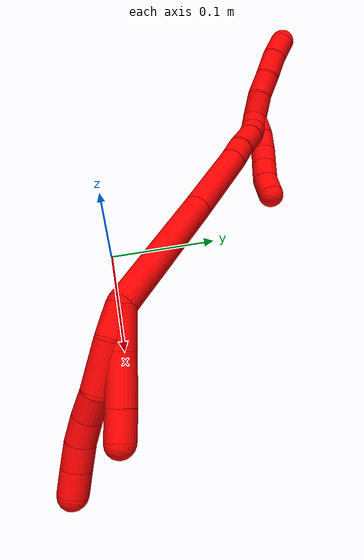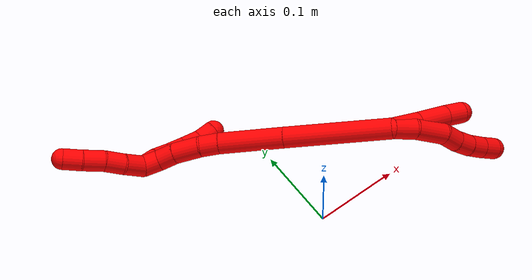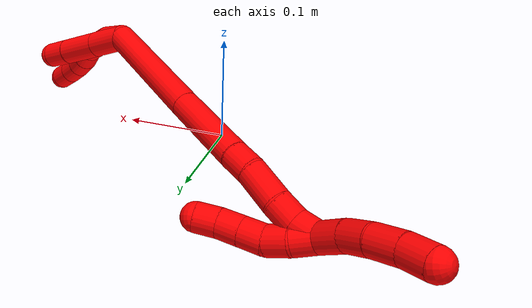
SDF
<sdf version="1.7">
 <world name="default">
  <model name="2">
   <static>0</static>
   <link name="2">
    <collision name="collision-cylinder-e_1_2_8">
     <pose>0.000602 -0.001704 0.013663 0.124067 0.043672 0.002713</pose>
     <geometry><cylinder><radius>0.0125</radius><length>0.027563</length></cylinder></geometry>
     <surface>
      <friction><ode><mu>1.16</mu><mu2>1.16</mu2><slip1>0</slip1><slip2>0</slip2></ode></friction>
      <contact><ode><kp>1e+06</kp><kd>1</kd><max_vel>0</max_vel><min_depth>0.001</min_depth></ode></contact>
     </surface>
    </collision>
    <visual name="visual-cylinder-e_1_2_8">
     <pose>0.000602 -0.001704 0.013663 0.124067 0.043672 0.002713</pose>
     <geometry><cylinder><radius>0.0125</radius><length>0.027563</length></cylinder></geometry>
     <material><ambient>1 0 0 1</ambient></material>
    </visual>
    <collision name="collision-cylinder-e_2_8_9">
     <pose>0.003071 -0.001054 0.047393 -0.116773 0.092162 -0.005391</pose>
     <geometry><cylinder><radius>0.0125</radius><length>0.040582</length></cylinder></geometry>
     <surface>
      <friction><ode><mu>1.16</mu><mu2>1.16</mu2><slip1>0</slip1><slip2>0</slip2></ode></friction>
      <contact><ode><kp>1e+06</kp><kd>1</kd><max_vel>0</max_vel><min_depth>0.001</min_depth></ode></contact>
     </surface>
    </collision>
    <visual name="visual-cylinder-e_2_8_9">
     <pose>0.003071 -0.001054 0.047393 -0.116773 0.092162 -0.005391</pose>
     <geometry><cylinder><radius>0.0125</radius><length>0.040582</length></cylinder></geometry>
     <material><ambient>1 0 0 1</ambient></material>
    </visual>
    <collision name="collision-cylinder-e_3_9_10">
     <pose>0.00785 0.004788 0.077192 -0.344141 0.274547 -0.048006</pose>
     <geometry><cylinder><radius>0.0125</radius><length>0.021481</length></cylinder></geometry>
     <surface>
      <friction><ode><mu>1.16</mu><mu2>1.16</mu2><slip1>0</slip1><slip2>0</slip2></ode></friction>
      <contact><ode><kp>1e+06</kp><kd>1</kd><max_vel>0</max_vel><min_depth>0.001</min_depth></ode></contact>
     </surface>
    </collision>
    <visual name="visual-cylinder-e_3_9_10">
     <pose>0.00785 0.004788 0.077192 -0.344141 0.274547 -0.048006</pose>
     <geometry><cylinder><radius>0.0125</radius><length>0.021481</length></cylinder></geometry>
     <material><ambient>1 0 0 1</ambient></material>
    </visual>
    <collision name="collision-cylinder-e_4_10_11">
     <pose>0.012347 0.010861 0.096629 -0.260255 0.156562 -0.02053</pose>
     <geometry><cylinder><radius>0.0125</radius><length>0.020334</length></cylinder></geometry>
     <surface>
      <friction><ode><mu>1.16</mu><mu2>1.16</mu2><slip1>0</slip1><slip2>0</slip2></ode></friction>
      <contact><ode><kp>1e+06</kp><kd>1</kd><max_vel>0</max_vel><min_depth>0.001</min_depth></ode></contact>
     </surface>
    </collision>
    <visual name="visual-cylinder-e_4_10_11">
     <pose>0.012347 0.010861 0.096629 -0.260255 0.156562 -0.02053</pose>
     <geometry><cylinder><radius>0.0125</radius><length>0.020334</length></cylinder></geometry>
     <material><ambient>1 0 0 1</ambient></material>
    </visual>
    <collision name="collision-cylinder-e_5_11_12">
     <pose>0.014141 0.01572 0.116071 -0.229475 0.020863 -0.002404</pose>
     <geometry><cylinder><radius>0.0125</radius><length>0.020003</length></cylinder></geometry>
     <surface>
      <friction><ode><mu>1.16</mu><mu2>1.16</mu2><slip1>0</slip1><slip2>0</slip2></ode></friction>
      <contact><ode><kp>1e+06</kp><kd>1</kd><max_vel>0</max_vel><min_depth>0.001</min_depth></ode></contact>
     </surface>
    </collision>
    <visual name="visual-cylinder-e_5_11_12">
     <pose>0.014141 0.01572 0.116071 -0.229475 0.020863 -0.002404</pose>
     <geometry><cylinder><radius>0.0125</radius><length>0.020003</length></cylinder></geometry>
     <material><ambient>1 0 0 1</ambient></material>
    </visual>
    <collision name="collision-cylinder-e_6_12_6">
     <pose>0.014189 0.019881 0.135645 -0.189479 -0.016054 0.001526</pose>
     <geometry><cylinder><radius>0.0125</radius><length>0.020036</length></cylinder></geometry>
     <surface>
      <friction><ode><mu>1.16</mu><mu2>1.16</mu2><slip1>0</slip1><slip2>0</slip2></ode></friction>
      <contact><ode><kp>1e+06</kp><kd>1</kd><max_vel>0</max_vel><min_depth>0.001</min_depth></ode></contact>
     </surface>
    </collision>
    <visual name="visual-cylinder-e_6_12_6">
     <pose>0.014189 0.019881 0.135645 -0.189479 -0.016054 0.001526</pose>
     <geometry><cylinder><radius>0.0125</radius><length>0.020036</length></cylinder></geometry>
     <material><ambient>1 0 0 1</ambient></material>
    </visual>
    <collision name="collision-cylinder-e_1_2_13">
     <pose>-0.003957 0.000388 0.017307 -0.022416 -0.224727 0.00253</pose>
     <geometry><cylinder><radius>0.0125</radius><length>0.035516</length></cylinder></geometry>
     <surface>
      <friction><ode><mu>1.16</mu><mu2>1.16</mu2><slip1>0</slip1><slip2>0</slip2></ode></friction>
      <contact><ode><kp>1e+06</kp><kd>1</kd><max_vel>0</max_vel><min_depth>0.001</min_depth></ode></contact>
     </surface>
    </collision>
    <visual name="visual-cylinder-e_1_2_13">
     <pose>-0.003957 0.000388 0.017307 -0.022416 -0.224727 0.00253</pose>
     <geometry><cylinder><radius>0.0125</radius><length>0.035516</length></cylinder></geometry>
     <material><ambient>1 0 0 1</ambient></material>
    </visual>
    <collision name="collision-cylinder-e_2_13_14">
     <pose>-0.012827 0.001201 0.054269 -0.021625 -0.244891 0.002661</pose>
     <geometry><cylinder><radius>0.0125</radius><length>0.040528</length></cylinder></geometry>
     <surface>
      <friction><ode><mu>1.16</mu><mu2>1.16</mu2><slip1>0</slip1><slip2>0</slip2></ode></friction>
      <contact><ode><kp>1e+06</kp><kd>1</kd><max_vel>0</max_vel><min_depth>0.001</min_depth></ode></contact>
     </surface>
    </collision>
    <visual name="visual-cylinder-e_2_13_14">
     <pose>-0.012827 0.001201 0.054269 -0.021625 -0.244891 0.002661</pose>
     <geometry><cylinder><radius>0.0125</radius><length>0.040528</length></cylinder></geometry>
     <material><ambient>1 0 0 1</ambient></material>
    </visual>
    <collision name="collision-cylinder-e_3_14_5">
     <pose>-0.020207 0.001737 0.085645 -0.009422 -0.207378 0.00098</pose>
     <geometry><cylinder><radius>0.0125</radius><length>0.023956</length></cylinder></geometry>
     <surface>
      <friction><ode><mu>1.16</mu><mu2>1.16</mu2><slip1>0</slip1><slip2>0</slip2></ode></friction>
      <contact><ode><kp>1e+06</kp><kd>1</kd><max_vel>0</max_vel><min_depth>0.001</min_depth></ode></contact>
     </surface>
    </collision>
    <visual name="visual-cylinder-e_3_14_5">
     <pose>-0.020207 0.001737 0.085645 -0.009422 -0.207378 0.00098</pose>
     <geometry><cylinder><radius>0.0125</radius><length>0.023956</length></cylinder></geometry>
     <material><ambient>1 0 0 1</ambient></material>
    </visual>
    <collision name="collision-cylinder-e_1_2_15">
     <pose>-0.008078 0.037794 -0.050704 -2.50105 -0.127044 0.378935</pose>
     <geometry><cylinder><radius>0.0125</radius><length>0.127508</length></cylinder></geometry>
     <surface>
      <friction><ode><mu>1.16</mu><mu2>1.16</mu2><slip1>0</slip1><slip2>0</slip2></ode></friction>
      <contact><ode><kp>1e+06</kp><kd>1</kd><max_vel>0</max_vel><min_depth>0.001</min_depth></ode></contact>
     </surface>
    </collision>
    <visual name="visual-cylinder-e_1_2_15">
     <pose>-0.008078 0.037794 -0.050704 -2.50105 -0.127044 0.378935</pose>
     <geometry><cylinder><radius>0.0125</radius><length>0.127508</length></cylinder></geometry>
     <material><ambient>1 0 0 1</ambient></material>
    </visual>
    <collision name="collision-cylinder-e_2_15_16">
     <pose>-0.020601 0.09806 -0.13211 -2.50975 -0.116323 0.352575</pose>
     <geometry><cylinder><radius>0.0125</radius><length>0.076613</length></cylinder></geometry>
     <surface>
      <friction><ode><mu>1.16</mu><mu2>1.16</mu2><slip1>0</slip1><slip2>0</slip2></ode></friction>
      <contact><ode><kp>1e+06</kp><kd>1</kd><max_vel>0</max_vel><min_depth>0.001</min_depth></ode></contact>
     </surface>
    </collision>
    <visual name="visual-cylinder-e_2_15_16">
     <pose>-0.020601 0.09806 -0.13211 -2.50975 -0.116323 0.352575</pose>
     <geometry><cylinder><radius>0.0125</radius><length>0.076613</length></cylinder></geometry>
     <material><ambient>1 0 0 1</ambient></material>
    </visual>
    <collision name="collision-cylinder-e_3_16_17">
     <pose>-0.025518 0.127139 -0.171626 -2.49836 -0.042683 0.12795</pose>
     <geometry><cylinder><radius>0.0125</radius><length>0.022049</length></cylinder></geometry>
     <surface>
      <friction><ode><mu>1.16</mu><mu2>1.16</mu2><slip1>0</slip1><slip2>0</slip2></ode></friction>
      <contact><ode><kp>1e+06</kp><kd>1</kd><max_vel>0</max_vel><min_depth>0.001</min_depth></ode></contact>
     </surface>
    </collision>
    <visual name="visual-cylinder-e_3_16_17">
     <pose>-0.025518 0.127139 -0.171626 -2.49836 -0.042683 0.12795</pose>
     <geometry><cylinder><radius>0.0125</radius><length>0.022049</length></cylinder></geometry>
     <material><ambient>1 0 0 1</ambient></material>
    </visual>
    <collision name="collision-cylinder-e_4_17_18">
     <pose>-0.026167 0.145663 -0.191529 -2.32021 -0.01098 0.025214</pose>
     <geometry><cylinder><radius>0.0125</radius><length>0.032561</length></cylinder></geometry>
     <surface>
      <friction><ode><mu>1.16</mu><mu2>1.16</mu2><slip1>0</slip1><slip2>0</slip2></ode></friction>
      <contact><ode><kp>1e+06</kp><kd>1</kd><max_vel>0</max_vel><min_depth>0.001</min_depth></ode></contact>
     </surface>
    </collision>
    <visual name="visual-cylinder-e_4_17_18">
     <pose>-0.026167 0.145663 -0.191529 -2.32021 -0.01098 0.025214</pose>
     <geometry><cylinder><radius>0.0125</radius><length>0.032561</length></cylinder></geometry>
     <material><ambient>1 0 0 1</ambient></material>
    </visual>
    <collision name="collision-cylinder-e_5_18_19">
     <pose>-0.024901 0.165474 -0.209429 -2.28268 0.137694 -0.298895</pose>
     <geometry><cylinder><radius>0.0125</radius><length>0.021047</length></cylinder></geometry>
     <surface>
      <friction><ode><mu>1.16</mu><mu2>1.16</mu2><slip1>0</slip1><slip2>0</slip2></ode></friction>
      <contact><ode><kp>1e+06</kp><kd>1</kd><max_vel>0</max_vel><min_depth>0.001</min_depth></ode></contact>
     </surface>
    </collision>
    <visual name="visual-cylinder-e_5_18_19">
     <pose>-0.024901 0.165474 -0.209429 -2.28268 0.137694 -0.298895</pose>
     <geometry><cylinder><radius>0.0125</radius><length>0.021047</length></cylinder></geometry>
     <material><ambient>1 0 0 1</ambient></material>
    </visual>
    <collision name="collision-cylinder-e_6_19_1">
     <pose>-0.021571 0.178811 -0.224546 -2.56142 0.187553 -0.610454</pose>
     <geometry><cylinder><radius>0.0125</radius><length>0.020222</length></cylinder></geometry>
     <surface>
      <friction><ode><mu>1.16</mu><mu2>1.16</mu2><slip1>0</slip1><slip2>0</slip2></ode></friction>
      <contact><ode><kp>1e+06</kp><kd>1</kd><max_vel>0</max_vel><min_depth>0.001</min_depth></ode></contact>
     </surface>
    </collision>
    <visual name="visual-cylinder-e_6_19_1">
     <pose>-0.021571 0.178811 -0.224546 -2.56142 0.187553 -0.610454</pose>
     <geometry><cylinder><radius>0.0125</radius><length>0.020222</length></cylinder></geometry>
     <material><ambient>1 0 0 1</ambient></material>
    </visual>
    <collision name="collision-cylinder-e_1_1_20">
     <pose>-0.024651 0.184759 -0.224188 -0.057876 -0.519519 0.015385</pose>
     <geometry><cylinder><radius>0.0125</radius><length>0.02</length></cylinder></geometry>
     <surface>
      <friction><ode><mu>1.16</mu><mu2>1.16</mu2><slip1>0</slip1><slip2>0</slip2></ode></friction>
      <contact><ode><kp>1e+06</kp><kd>1</kd><max_vel>0</max_vel><min_depth>0.001</min_depth></ode></contact>
     </surface>
    </collision>
    <visual name="visual-cylinder-e_1_1_20">
     <pose>-0.024651 0.184759 -0.224188 -0.057876 -0.519519 0.015385</pose>
     <geometry><cylinder><radius>0.0125</radius><length>0.02</length></cylinder></geometry>
     <material><ambient>1 0 0 1</ambient></material>
    </visual>
    <collision name="collision-cylinder-e_2_20_21">
     <pose>-0.032904 0.184982 -0.206083 0.029593 -0.335049 -0.005005</pose>
     <geometry><cylinder><radius>0.0125</radius><length>0.02</length></cylinder></geometry>
     <surface>
      <friction><ode><mu>1.16</mu><mu2>1.16</mu2><slip1>0</slip1><slip2>0</slip2></ode></friction>
      <contact><ode><kp>1e+06</kp><kd>1</kd><max_vel>0</max_vel><min_depth>0.001</min_depth></ode></contact>
     </surface>
    </collision>
    <visual name="visual-cylinder-e_2_20_21">
     <pose>-0.032904 0.184982 -0.206083 0.029593 -0.335049 -0.005005</pose>
     <geometry><cylinder><radius>0.0125</radius><length>0.02</length></cylinder></geometry>
     <material><ambient>1 0 0 1</ambient></material>
    </visual>
    <collision name="collision-cylinder-e_3_21_22">
     <pose>-0.039072 0.181131 -0.187757 0.38214 -0.292208 -0.056912</pose>
     <geometry><cylinder><radius>0.0125</radius><length>0.02</length></cylinder></geometry>
     <surface>
      <friction><ode><mu>1.16</mu><mu2>1.16</mu2><slip1>0</slip1><slip2>0</slip2></ode></friction>
      <contact><ode><kp>1e+06</kp><kd>1</kd><max_vel>0</max_vel><min_depth>0.001</min_depth></ode></contact>
     </surface>
    </collision>
    <visual name="visual-cylinder-e_3_21_22">
     <pose>-0.039072 0.181131 -0.187757 0.38214 -0.292208 -0.056912</pose>
     <geometry><cylinder><radius>0.0125</radius><length>0.02</length></cylinder></geometry>
     <material><ambient>1 0 0 1</ambient></material>
    </visual>
    <collision name="collision-cylinder-e_4_22_23">
     <pose>-0.045008 0.173968 -0.170053 0.386799 -0.310425 -0.06127</pose>
     <geometry><cylinder><radius>0.0125</radius><length>0.02</length></cylinder></geometry>
     <surface>
      <friction><ode><mu>1.16</mu><mu2>1.16</mu2><slip1>0</slip1><slip2>0</slip2></ode></friction>
      <contact><ode><kp>1e+06</kp><kd>1</kd><max_vel>0</max_vel><min_depth>0.001</min_depth></ode></contact>
     </surface>
    </collision>
    <visual name="visual-cylinder-e_4_22_23">
     <pose>-0.045008 0.173968 -0.170053 0.386799 -0.310425 -0.06127</pose>
     <geometry><cylinder><radius>0.0125</radius><length>0.02</length></cylinder></geometry>
     <material><ambient>1 0 0 1</ambient></material>
    </visual>
    <collision name="collision-cylinder-e_5_23_4">
     <pose>-0.053102 0.16722 -0.153195 0.374063 -0.528172 -0.102254</pose>
     <geometry><cylinder><radius>0.0125</radius><length>0.02</length></cylinder></geometry>
     <surface>
      <friction><ode><mu>1.16</mu><mu2>1.16</mu2><slip1>0</slip1><slip2>0</slip2></ode></friction>
      <contact><ode><kp>1e+06</kp><kd>1</kd><max_vel>0</max_vel><min_depth>0.001</min_depth></ode></contact>
     </surface>
    </collision>
    <visual name="visual-cylinder-e_5_23_4">
     <pose>-0.053102 0.16722 -0.153195 0.374063 -0.528172 -0.102254</pose>
     <geometry><cylinder><radius>0.0125</radius><length>0.02</length></cylinder></geometry>
     <material><ambient>1 0 0 1</ambient></material>
    </visual>
    <collision name="collision-cylinder-e_1_1_24">
     <pose>-0.020327 0.182754 -0.246221 3.02961 -0.047614 -0.803438</pose>
     <geometry><cylinder><radius>0.0125</radius><length>0.026931</length></cylinder></geometry>
     <surface>
      <friction><ode><mu>1.16</mu><mu2>1.16</mu2><slip1>0</slip1><slip2>0</slip2></ode></friction>
      <contact><ode><kp>1e+06</kp><kd>1</kd><max_vel>0</max_vel><min_depth>0.001</min_depth></ode></contact>
     </surface>
    </collision>
    <visual name="visual-cylinder-e_1_1_24">
     <pose>-0.020327 0.182754 -0.246221 3.02961 -0.047614 -0.803438</pose>
     <geometry><cylinder><radius>0.0125</radius><length>0.026931</length></cylinder></geometry>
     <material><ambient>1 0 0 1</ambient></material>
    </visual>
    <collision name="collision-cylinder-e_2_24_25">
     <pose>-0.022924 0.181724 -0.271317 -3.10128 -0.165072 2.66355</pose>
     <geometry><cylinder><radius>0.0125</radius><length>0.023804</length></cylinder></geometry>
     <surface>
      <friction><ode><mu>1.16</mu><mu2>1.16</mu2><slip1>0</slip1><slip2>0</slip2></ode></friction>
      <contact><ode><kp>1e+06</kp><kd>1</kd><max_vel>0</max_vel><min_depth>0.001</min_depth></ode></contact>
     </surface>
    </collision>
    <visual name="visual-cylinder-e_2_24_25">
     <pose>-0.022924 0.181724 -0.271317 -3.10128 -0.165072 2.66355</pose>
     <geometry><cylinder><radius>0.0125</radius><length>0.023804</length></cylinder></geometry>
     <material><ambient>1 0 0 1</ambient></material>
    </visual>
    <collision name="collision-cylinder-e_3_25_26">
     <pose>-0.025905 0.184419 -0.29581 -2.96921 -0.078963 0.857591</pose>
     <geometry><cylinder><radius>0.0125</radius><length>0.025988</length></cylinder></geometry>
     <surface>
      <friction><ode><mu>1.16</mu><mu2>1.16</mu2><slip1>0</slip1><slip2>0</slip2></ode></friction>
      <contact><ode><kp>1e+06</kp><kd>1</kd><max_vel>0</max_vel><min_depth>0.001</min_depth></ode></contact>
     </surface>
    </collision>
    <visual name="visual-cylinder-e_3_25_26">
     <pose>-0.025905 0.184419 -0.29581 -2.96921 -0.078963 0.857591</pose>
     <geometry><cylinder><radius>0.0125</radius><length>0.025988</length></cylinder></geometry>
     <material><ambient>1 0 0 1</ambient></material>
    </visual>
    <collision name="collision-cylinder-e_4_26_3">
     <pose>-0.028816 0.189793 -0.319615 -2.86354 -0.162851 1.05595</pose>
     <geometry><cylinder><radius>0.0125</radius><length>0.023277</length></cylinder></geometry>
     <surface>
      <friction><ode><mu>1.16</mu><mu2>1.16</mu2><slip1>0</slip1><slip2>0</slip2></ode></friction>
      <contact><ode><kp>1e+06</kp><kd>1</kd><max_vel>0</max_vel><min_depth>0.001</min_depth></ode></contact>
     </surface>
    </collision>
    <visual name="visual-cylinder-e_4_26_3">
     <pose>-0.028816 0.189793 -0.319615 -2.86354 -0.162851 1.05595</pose>
     <geometry><cylinder><radius>0.0125</radius><length>0.023277</length></cylinder></geometry>
     <material><ambient>1 0 0 1</ambient></material>
    </visual>
    <collision name="collision-sphere-3">
     <pose>-0.030703 0.192945 -0.330658 0 -0 0</pose>
     <geometry><sphere><radius>0.0125</radius></sphere></geometry>
     <surface>
      <friction><ode><mu>1.16</mu><mu2>1.16</mu2><slip1>0</slip1><slip2>0</slip2></ode></friction>
      <contact><ode><kp>1e+06</kp><kd>1</kd><max_vel>0</max_vel><min_depth>0.001</min_depth></ode></contact>
     </surface>
    </collision>
    <visual name="visual-sphere-3">
     <pose>-0.030703 0.192945 -0.330658 0 -0 0</pose>
     <geometry><sphere><radius>0.0125</radius></sphere></geometry>
     <material><ambient>1 0 0 1</ambient></material>
    </visual>
    <collision name="collision-sphere-26">
     <pose>-0.02693 0.186641 -0.308571 0 -0 0</pose>
     <geometry><sphere><radius>0.0125</radius></sphere></geometry>
     <surface>
      <friction><ode><mu>1.16</mu><mu2>1.16</mu2><slip1>0</slip1><slip2>0</slip2></ode></friction>
      <contact><ode><kp>1e+06</kp><kd>1</kd><max_vel>0</max_vel><min_depth>0.001</min_depth></ode></contact>
     </surface>
    </collision>
    <visual name="visual-sphere-26">
     <pose>-0.02693 0.186641 -0.308571 0 -0 0</pose>
     <geometry><sphere><radius>0.0125</radius></sphere></geometry>
     <material><ambient>1 0 0 1</ambient></material>
    </visual>
    <collision name="collision-sphere-25">
     <pose>-0.02488 0.182197 -0.283048 0 -0 0</pose>
     <geometry><sphere><radius>0.0125</radius></sphere></geometry>
     <surface>
      <friction><ode><mu>1.16</mu><mu2>1.16</mu2><slip1>0</slip1><slip2>0</slip2></ode></friction>
      <contact><ode><kp>1e+06</kp><kd>1</kd><max_vel>0</max_vel><min_depth>0.001</min_depth></ode></contact>
     </surface>
    </collision>
    <visual name="visual-sphere-25">
     <pose>-0.02488 0.182197 -0.283048 0 -0 0</pose>
     <geometry><sphere><radius>0.0125</radius></sphere></geometry>
     <material><ambient>1 0 0 1</ambient></material>
    </visual>
    <collision name="collision-sphere-24">
     <pose>-0.020968 0.181251 -0.259587 0 -0 0</pose>
     <geometry><sphere><radius>0.0125</radius></sphere></geometry>
     <surface>
      <friction><ode><mu>1.16</mu><mu2>1.16</mu2><slip1>0</slip1><slip2>0</slip2></ode></friction>
      <contact><ode><kp>1e+06</kp><kd>1</kd><max_vel>0</max_vel><min_depth>0.001</min_depth></ode></contact>
     </surface>
    </collision>
    <visual name="visual-sphere-24">
     <pose>-0.020968 0.181251 -0.259587 0 -0 0</pose>
     <geometry><sphere><radius>0.0125</radius></sphere></geometry>
     <material><ambient>1 0 0 1</ambient></material>
    </visual>
    <collision name="collision-sphere-4">
     <pose>-0.058142 0.164064 -0.145155 0 -0 0</pose>
     <geometry><sphere><radius>0.0125</radius></sphere></geometry>
     <surface>
      <friction><ode><mu>1.16</mu><mu2>1.16</mu2><slip1>0</slip1><slip2>0</slip2></ode></friction>
      <contact><ode><kp>1e+06</kp><kd>1</kd><max_vel>0</max_vel><min_depth>0.001</min_depth></ode></contact>
     </surface>
    </collision>
    <visual name="visual-sphere-4">
     <pose>-0.058142 0.164064 -0.145155 0 -0 0</pose>
     <geometry><sphere><radius>0.0125</radius></sphere></geometry>
     <material><ambient>1 0 0 1</ambient></material>
    </visual>
    <collision name="collision-sphere-23">
     <pose>-0.048062 0.170376 -0.161235 0 -0 0</pose>
     <geometry><sphere><radius>0.0125</radius></sphere></geometry>
     <surface>
      <friction><ode><mu>1.16</mu><mu2>1.16</mu2><slip1>0</slip1><slip2>0</slip2></ode></friction>
      <contact><ode><kp>1e+06</kp><kd>1</kd><max_vel>0</max_vel><min_depth>0.001</min_depth></ode></contact>
     </surface>
    </collision>
    <visual name="visual-sphere-23">
     <pose>-0.048062 0.170376 -0.161235 0 -0 0</pose>
     <geometry><sphere><radius>0.0125</radius></sphere></geometry>
     <material><ambient>1 0 0 1</ambient></material>
    </visual>
    <collision name="collision-sphere-22">
     <pose>-0.041953 0.17756 -0.178872 0 -0 0</pose>
     <geometry><sphere><radius>0.0125</radius></sphere></geometry>
     <surface>
      <friction><ode><mu>1.16</mu><mu2>1.16</mu2><slip1>0</slip1><slip2>0</slip2></ode></friction>
      <contact><ode><kp>1e+06</kp><kd>1</kd><max_vel>0</max_vel><min_depth>0.001</min_depth></ode></contact>
     </surface>
    </collision>
    <visual name="visual-sphere-22">
     <pose>-0.041953 0.17756 -0.178872 0 -0 0</pose>
     <geometry><sphere><radius>0.0125</radius></sphere></geometry>
     <material><ambient>1 0 0 1</ambient></material>
    </visual>
    <collision name="collision-sphere-21">
     <pose>-0.036192 0.184702 -0.196643 0 -0 0</pose>
     <geometry><sphere><radius>0.0125</radius></sphere></geometry>
     <surface>
      <friction><ode><mu>1.16</mu><mu2>1.16</mu2><slip1>0</slip1><slip2>0</slip2></ode></friction>
      <contact><ode><kp>1e+06</kp><kd>1</kd><max_vel>0</max_vel><min_depth>0.001</min_depth></ode></contact>
     </surface>
    </collision>
    <visual name="visual-sphere-21">
     <pose>-0.036192 0.184702 -0.196643 0 -0 0</pose>
     <geometry><sphere><radius>0.0125</radius></sphere></geometry>
     <material><ambient>1 0 0 1</ambient></material>
    </visual>
    <collision name="collision-sphere-20">
     <pose>-0.029615 0.185261 -0.215522 0 -0 0</pose>
     <geometry><sphere><radius>0.0125</radius></sphere></geometry>
     <surface>
      <friction><ode><mu>1.16</mu><mu2>1.16</mu2><slip1>0</slip1><slip2>0</slip2></ode></friction>
      <contact><ode><kp>1e+06</kp><kd>1</kd><max_vel>0</max_vel><min_depth>0.001</min_depth></ode></contact>
     </surface>
    </collision>
    <visual name="visual-sphere-20">
     <pose>-0.029615 0.185261 -0.215522 0 -0 0</pose>
     <geometry><sphere><radius>0.0125</radius></sphere></geometry>
     <material><ambient>1 0 0 1</ambient></material>
    </visual>
    <collision name="collision-sphere-12">
     <pose>0.01435 0.017994 0.125808 0 -0 0</pose>
     <geometry><sphere><radius>0.0125</radius></sphere></geometry>
     <surface>
      <friction><ode><mu>1.16</mu><mu2>1.16</mu2><slip1>0</slip1><slip2>0</slip2></ode></friction>
      <contact><ode><kp>1e+06</kp><kd>1</kd><max_vel>0</max_vel><min_depth>0.001</min_depth></ode></contact>
     </surface>
    </collision>
    <visual name="visual-sphere-12">
     <pose>0.01435 0.017994 0.125808 0 -0 0</pose>
     <geometry><sphere><radius>0.0125</radius></sphere></geometry>
     <material><ambient>1 0 0 1</ambient></material>
    </visual>
    <collision name="collision-sphere-11">
     <pose>0.013933 0.013445 0.106334 0 -0 0</pose>
     <geometry><sphere><radius>0.0125</radius></sphere></geometry>
     <surface>
      <friction><ode><mu>1.16</mu><mu2>1.16</mu2><slip1>0</slip1><slip2>0</slip2></ode></friction>
      <contact><ode><kp>1e+06</kp><kd>1</kd><max_vel>0</max_vel><min_depth>0.001</min_depth></ode></contact>
     </surface>
    </collision>
    <visual name="visual-sphere-11">
     <pose>0.013933 0.013445 0.106334 0 -0 0</pose>
     <geometry><sphere><radius>0.0125</radius></sphere></geometry>
     <material><ambient>1 0 0 1</ambient></material>
    </visual>
    <collision name="collision-sphere-10">
     <pose>0.010762 0.008277 0.086925 0 -0 0</pose>
     <geometry><sphere><radius>0.0125</radius></sphere></geometry>
     <surface>
      <friction><ode><mu>1.16</mu><mu2>1.16</mu2><slip1>0</slip1><slip2>0</slip2></ode></friction>
      <contact><ode><kp>1e+06</kp><kd>1</kd><max_vel>0</max_vel><min_depth>0.001</min_depth></ode></contact>
     </surface>
    </collision>
    <visual name="visual-sphere-10">
     <pose>0.010762 0.008277 0.086925 0 -0 0</pose>
     <geometry><sphere><radius>0.0125</radius></sphere></geometry>
     <material><ambient>1 0 0 1</ambient></material>
    </visual>
    <collision name="collision-sphere-9">
     <pose>0.004938 0.0013 0.06746 0 -0 0</pose>
     <geometry><sphere><radius>0.0125</radius></sphere></geometry>
     <surface>
      <friction><ode><mu>1.16</mu><mu2>1.16</mu2><slip1>0</slip1><slip2>0</slip2></ode></friction>
      <contact><ode><kp>1e+06</kp><kd>1</kd><max_vel>0</max_vel><min_depth>0.001</min_depth></ode></contact>
     </surface>
    </collision>
    <visual name="visual-sphere-9">
     <pose>0.004938 0.0013 0.06746 0 -0 0</pose>
     <geometry><sphere><radius>0.0125</radius></sphere></geometry>
     <material><ambient>1 0 0 1</ambient></material>
    </visual>
    <collision name="collision-sphere-2">
     <geometry><sphere><radius>0.0125</radius></sphere></geometry>
     <surface>
      <friction><ode><mu>1.16</mu><mu2>1.16</mu2><slip1>0</slip1><slip2>0</slip2></ode></friction>
      <contact><ode><kp>1e+06</kp><kd>1</kd><max_vel>0</max_vel><min_depth>0.001</min_depth></ode></contact>
     </surface>
    </collision>
    <visual name="visual-sphere-2">
     <geometry><sphere><radius>0.0125</radius></sphere></geometry>
     <material><ambient>1 0 0 1</ambient></material>
    </visual>
    <collision name="collision-sphere-19">
     <pose>-0.023457 0.173366 -0.216238 0 -0 0</pose>
     <geometry><sphere><radius>0.0125</radius></sphere></geometry>
     <surface>
      <friction><ode><mu>1.16</mu><mu2>1.16</mu2><slip1>0</slip1><slip2>0</slip2></ode></friction>
      <contact><ode><kp>1e+06</kp><kd>1</kd><max_vel>0</max_vel><min_depth>0.001</min_depth></ode></contact>
     </surface>
    </collision>
    <visual name="visual-sphere-19">
     <pose>-0.023457 0.173366 -0.216238 0 -0 0</pose>
     <geometry><sphere><radius>0.0125</radius></sphere></geometry>
     <material><ambient>1 0 0 1</ambient></material>
    </visual>
    <collision name="collision-sphere-8">
     <pose>0.001203 -0.003408 0.027325 0 -0 0</pose>
     <geometry><sphere><radius>0.0125</radius></sphere></geometry>
     <surface>
      <friction><ode><mu>1.16</mu><mu2>1.16</mu2><slip1>0</slip1><slip2>0</slip2></ode></friction>
      <contact><ode><kp>1e+06</kp><kd>1</kd><max_vel>0</max_vel><min_depth>0.001</min_depth></ode></contact>
     </surface>
    </collision>
    <visual name="visual-sphere-8">
     <pose>0.001203 -0.003408 0.027325 0 -0 0</pose>
     <geometry><sphere><radius>0.0125</radius></sphere></geometry>
     <material><ambient>1 0 0 1</ambient></material>
    </visual>
    <collision name="collision-sphere-6">
     <pose>0.014028 0.021767 0.145483 0 -0 0</pose>
     <geometry><sphere><radius>0.0125</radius></sphere></geometry>
     <surface>
      <friction><ode><mu>1.16</mu><mu2>1.16</mu2><slip1>0</slip1><slip2>0</slip2></ode></friction>
      <contact><ode><kp>1e+06</kp><kd>1</kd><max_vel>0</max_vel><min_depth>0.001</min_depth></ode></contact>
     </surface>
    </collision>
    <visual name="visual-sphere-6">
     <pose>0.014028 0.021767 0.145483 0 -0 0</pose>
     <geometry><sphere><radius>0.0125</radius></sphere></geometry>
     <material><ambient>1 0 0 1</ambient></material>
    </visual>
    <collision name="collision-sphere-13">
     <pose>-0.007914 0.000776 0.034614 0 -0 0</pose>
     <geometry><sphere><radius>0.0125</radius></sphere></geometry>
     <surface>
      <friction><ode><mu>1.16</mu><mu2>1.16</mu2><slip1>0</slip1><slip2>0</slip2></ode></friction>
      <contact><ode><kp>1e+06</kp><kd>1</kd><max_vel>0</max_vel><min_depth>0.001</min_depth></ode></contact>
     </surface>
    </collision>
    <visual name="visual-sphere-13">
     <pose>-0.007914 0.000776 0.034614 0 -0 0</pose>
     <geometry><sphere><radius>0.0125</radius></sphere></geometry>
     <material><ambient>1 0 0 1</ambient></material>
    </visual>
    <collision name="collision-sphere-14">
     <pose>-0.01774 0.001626 0.073924 0 -0 0</pose>
     <geometry><sphere><radius>0.0125</radius></sphere></geometry>
     <surface>
      <friction><ode><mu>1.16</mu><mu2>1.16</mu2><slip1>0</slip1><slip2>0</slip2></ode></friction>
      <contact><ode><kp>1e+06</kp><kd>1</kd><max_vel>0</max_vel><min_depth>0.001</min_depth></ode></contact>
     </surface>
    </collision>
    <visual name="visual-sphere-14">
     <pose>-0.01774 0.001626 0.073924 0 -0 0</pose>
     <geometry><sphere><radius>0.0125</radius></sphere></geometry>
     <material><ambient>1 0 0 1</ambient></material>
    </visual>
    <collision name="collision-sphere-5">
     <pose>-0.022673 0.001847 0.097366 0 -0 0</pose>
     <geometry><sphere><radius>0.0125</radius></sphere></geometry>
     <surface>
      <friction><ode><mu>1.16</mu><mu2>1.16</mu2><slip1>0</slip1><slip2>0</slip2></ode></friction>
      <contact><ode><kp>1e+06</kp><kd>1</kd><max_vel>0</max_vel><min_depth>0.001</min_depth></ode></contact>
     </surface>
    </collision>
    <visual name="visual-sphere-5">
     <pose>-0.022673 0.001847 0.097366 0 -0 0</pose>
     <geometry><sphere><radius>0.0125</radius></sphere></geometry>
     <material><ambient>1 0 0 1</ambient></material>
    </visual>
    <collision name="collision-sphere-15">
     <pose>-0.016155 0.075588 -0.101408 0 -0 0</pose>
     <geometry><sphere><radius>0.0125</radius></sphere></geometry>
     <surface>
      <friction><ode><mu>1.16</mu><mu2>1.16</mu2><slip1>0</slip1><slip2>0</slip2></ode></friction>
      <contact><ode><kp>1e+06</kp><kd>1</kd><max_vel>0</max_vel><min_depth>0.001</min_depth></ode></contact>
     </surface>
    </collision>
    <visual name="visual-sphere-15">
     <pose>-0.016155 0.075588 -0.101408 0 -0 0</pose>
     <geometry><sphere><radius>0.0125</radius></sphere></geometry>
     <material><ambient>1 0 0 1</ambient></material>
    </visual>
    <collision name="collision-sphere-16">
     <pose>-0.025047 0.120532 -0.162813 0 -0 0</pose>
     <geometry><sphere><radius>0.0125</radius></sphere></geometry>
     <surface>
      <friction><ode><mu>1.16</mu><mu2>1.16</mu2><slip1>0</slip1><slip2>0</slip2></ode></friction>
      <contact><ode><kp>1e+06</kp><kd>1</kd><max_vel>0</max_vel><min_depth>0.001</min_depth></ode></contact>
     </surface>
    </collision>
    <visual name="visual-sphere-16">
     <pose>-0.025047 0.120532 -0.162813 0 -0 0</pose>
     <geometry><sphere><radius>0.0125</radius></sphere></geometry>
     <material><ambient>1 0 0 1</ambient></material>
    </visual>
    <collision name="collision-sphere-17">
     <pose>-0.025988 0.133745 -0.18044 0 -0 0</pose>
     <geometry><sphere><radius>0.0125</radius></sphere></geometry>
     <surface>
      <friction><ode><mu>1.16</mu><mu2>1.16</mu2><slip1>0</slip1><slip2>0</slip2></ode></friction>
      <contact><ode><kp>1e+06</kp><kd>1</kd><max_vel>0</max_vel><min_depth>0.001</min_depth></ode></contact>
     </surface>
    </collision>
    <visual name="visual-sphere-17">
     <pose>-0.025988 0.133745 -0.18044 0 -0 0</pose>
     <geometry><sphere><radius>0.0125</radius></sphere></geometry>
     <material><ambient>1 0 0 1</ambient></material>
    </visual>
    <collision name="collision-sphere-18">
     <pose>-0.026346 0.157581 -0.202619 0 -0 0</pose>
     <geometry><sphere><radius>0.0125</radius></sphere></geometry>
     <surface>
      <friction><ode><mu>1.16</mu><mu2>1.16</mu2><slip1>0</slip1><slip2>0</slip2></ode></friction>
      <contact><ode><kp>1e+06</kp><kd>1</kd><max_vel>0</max_vel><min_depth>0.001</min_depth></ode></contact>
     </surface>
    </collision>
    <visual name="visual-sphere-18">
     <pose>-0.026346 0.157581 -0.202619 0 -0 0</pose>
     <geometry><sphere><radius>0.0125</radius></sphere></geometry>
     <material><ambient>1 0 0 1</ambient></material>
    </visual>
    <collision name="collision-sphere-1">
     <pose>-0.019686 0.184257 -0.232854 0 -0 0</pose>
     <geometry><sphere><radius>0.0125</radius></sphere></geometry>
     <surface>
      <friction><ode><mu>1.16</mu><mu2>1.16</mu2><slip1>0</slip1><slip2>0</slip2></ode></friction>
      <contact><ode><kp>1e+06</kp><kd>1</kd><max_vel>0</max_vel><min_depth>0.001</min_depth></ode></contact>
     </surface>
    </collision>
    <visual name="visual-sphere-1">
     <pose>-0.019686 0.184257 -0.232854 0 -0 0</pose>
     <geometry><sphere><radius>0.0125</radius></sphere></geometry>
     <material><ambient>1 0 0 1</ambient></material>
    </visual>
    <inertial>
     <pose>-0.015109 0.085769 -0.089026 0 -0 0</pose>
     <mass>0.75</mass>
     <inertia>
      <ixx>0.000323</ixx>
      <ixy>0</ixy>
      <ixz>0</ixz>
      <iyy>-3.3e-05</iyy>
      <iyz>0</iyz>
      <izz>-0.000104</izz>
     </inertia>
    </inertial>
   </link>
   <pose>0.104593 0.005297 0.091913 -1.99083 0.196198 -2.06951</pose>
  </model>
 </world>
</sdf>
